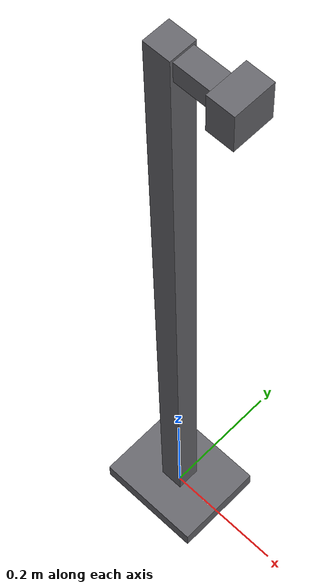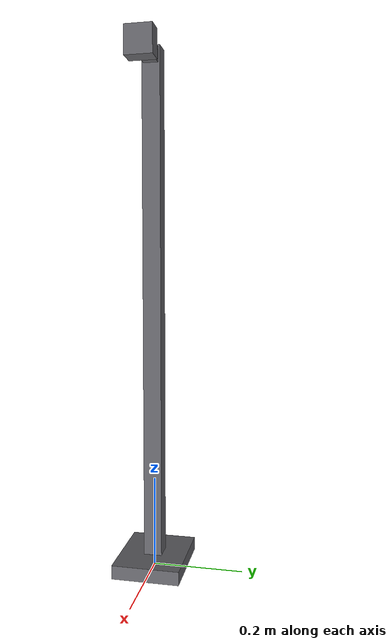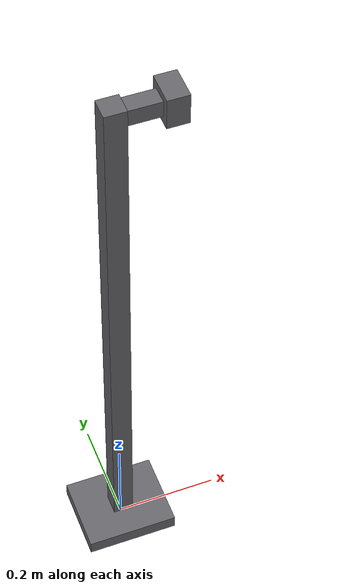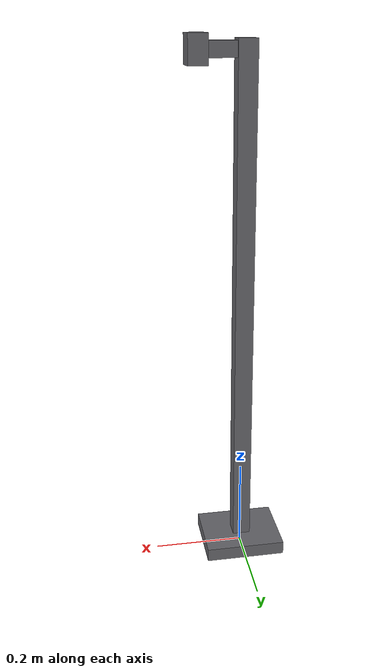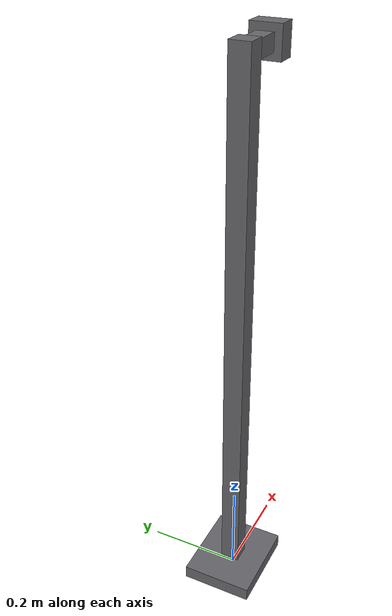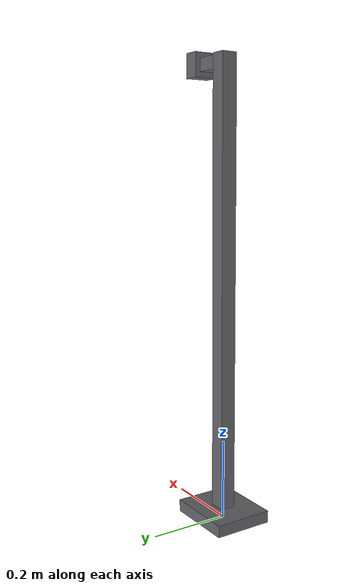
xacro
<?xml version="1.0"?>
<robot name="camera_pedestal" xmlns:xacro="http://ros.org/wiki/xacro">

  <xacro:arg name="pedestal_height" default="1.15"/>
  <xacro:arg name="arm_length" default="0.10"/>    <!-- horizontal reach -->
  <xacro:arg name="post_size" default="0.04"/>

  <xacro:property name="ph" value="$(arg pedestal_height)"/>
  <xacro:property name="al" value="$(arg arm_length)"/>
  <xacro:property name="ps" value="$(arg post_size)"/>

  <material name="pedestal_gray">
    <color rgba="0.40 0.40 0.42 1"/>
  </material>

  <link name="pedestal_base">
    <inertial>
      <mass value="15.0"/>
      <inertia ixx="1.0" ixy="0" ixz="0" iyy="1.0" iyz="0" izz="1.0"/>
      <origin xyz="0 0 ${ph/2}" rpy="0 0 0"/>
    </inertial>

    <!-- Vertical post -->
    <visual name="post">
      <origin xyz="0 0 ${ph/2}" rpy="0 0 0"/>
      <geometry><box size="${ps} ${ps} ${ph}"/></geometry>
      <material name="pedestal_gray"/>
    </visual>
    <collision name="post_col">
      <origin xyz="0 0 ${ph/2}" rpy="0 0 0"/>
      <geometry><box size="${ps} ${ps} ${ph}"/></geometry>
    </collision>

    <!-- Horizontal arm (extends in +X direction toward workspace) -->
    <visual name="arm">
      <origin xyz="${al/2} 0 ${ph - ps/2}" rpy="0 0 0"/>
      <geometry><box size="${al} ${ps*0.8} ${ps*0.8}"/></geometry>
      <material name="pedestal_gray"/>
    </visual>
    <collision name="arm_col">
      <origin xyz="${al/2} 0 ${ph - ps/2}" rpy="0 0 0"/>
      <geometry><box size="${al} ${ps*0.8} ${ps*0.8}"/></geometry>
    </collision>

    <!-- Camera mounting bracket at arm tip -->
    <visual name="camera_bracket">
      <origin xyz="${al} 0 ${ph - ps/2}" rpy="0 0 0"/>
      <geometry><box size="${ps} ${ps*1.5} ${ps*1.5}"/></geometry>
      <material name="pedestal_gray"/>
    </visual>

    <!-- Base plate -->
    <visual name="foot">
      <origin xyz="0 0 0.015" rpy="0 0 0"/>
      <geometry><box size="0.18 0.15 0.03"/></geometry>
      <material name="pedestal_gray"/>
    </visual>
  </link>

  <gazebo><static>true</static></gazebo>
</robot>
